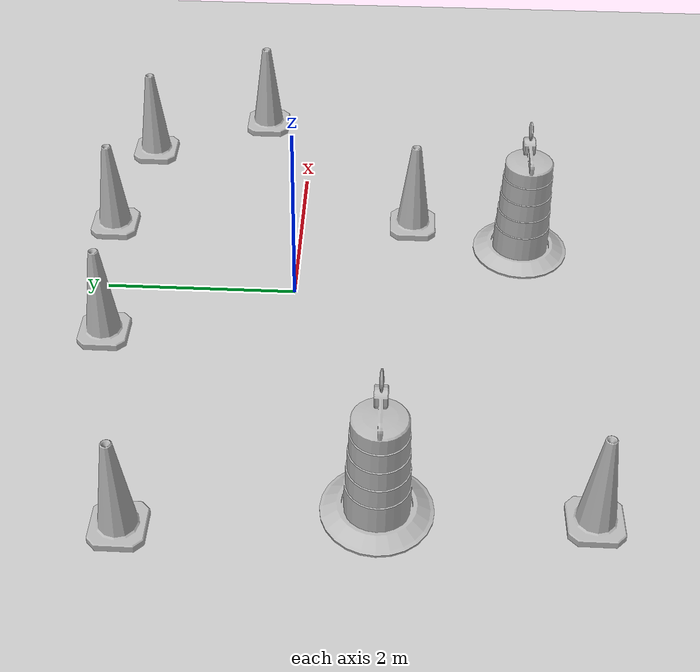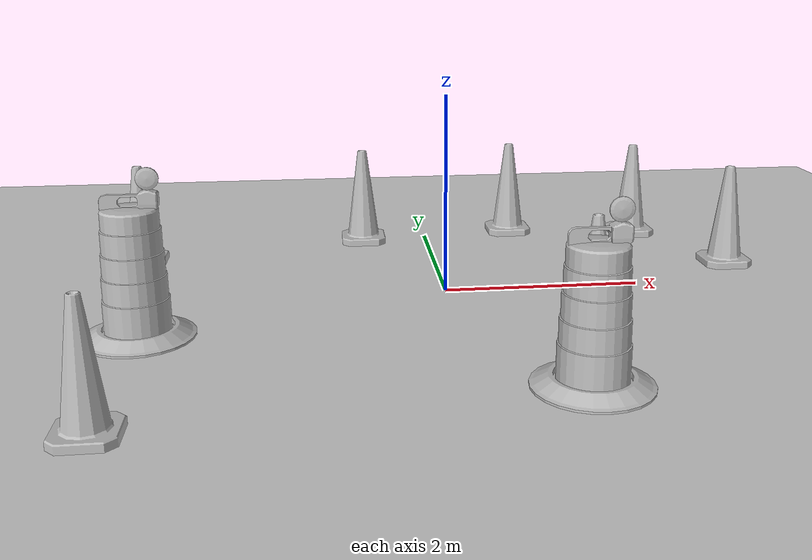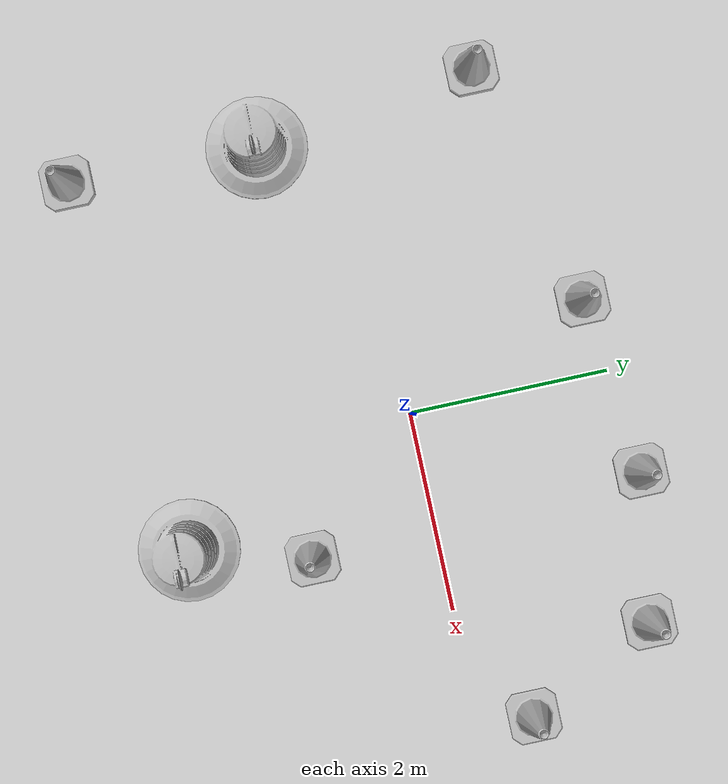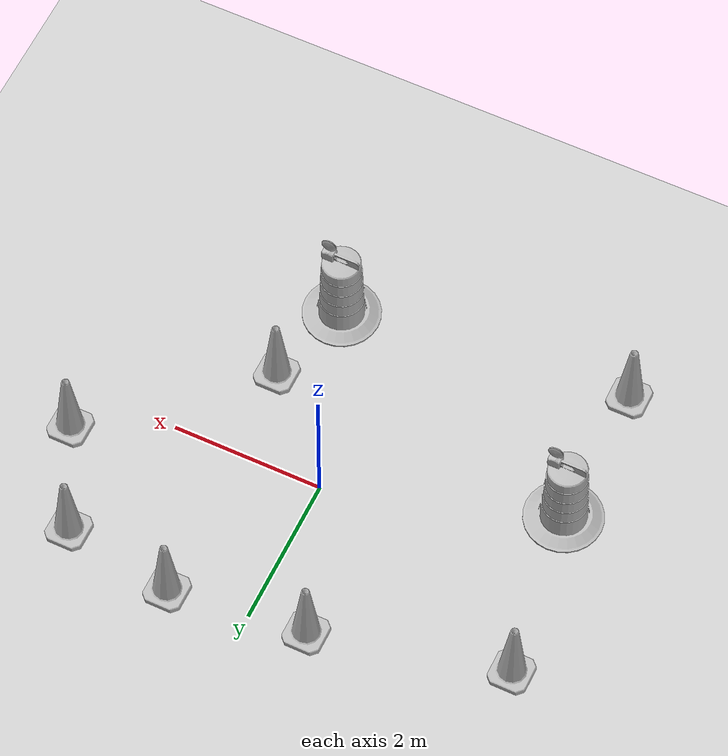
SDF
<sdf version="1.7">
 <world name="default">
  <light name="sun" type="directional">
   <pose>0 0 10 0 -0 0</pose>
   <diffuse>0.8 0.8 0.8 1</diffuse>
   <specular>0.2 0.2 0.2 1</specular>
   <attenuation>
    <range>1000</range>
    <constant>0.9</constant>
    <linear>0.01</linear>
    <quadratic>0.001</quadratic>
   </attenuation>
   <direction>-0.5 0.1 -0.9</direction>
   <spot><inner_angle>0</inner_angle><outer_angle>0</outer_angle><falloff>0</falloff></spot>
  </light>
  <model name="ground_plane">
   <static>1</static>
   <link name="link">
    <collision name="collision">
     <geometry><plane><normal>0 0 1</normal><size>100 100</size></plane></geometry>
     <surface>
      <contact><collide_bitmask>65535</collide_bitmask></contact>
      <friction><ode><mu>100</mu><mu2>50</mu2></ode></friction>
     </surface>
    </collision>
    <visual name="visual">
     <cast_shadows>0</cast_shadows>
     <geometry><plane><normal>0 0 1</normal><size>100 100</size></plane></geometry>
     <material>
      <script><uri>file://media/materials/scripts/gazebo.material</uri><name>Gazebo/Grey</name></script>
     </material>
    </visual>
   </link>
  </model>
  <gravity>0 0 -9.8</gravity>
  <magnetic_field>6e-06 2.3e-05 -4.2e-05</magnetic_field>
  <atmosphere type="adiabatic"/>
  <physics type="ode">
   <max_step_size>0.001</max_step_size>
   <real_time_factor>1</real_time_factor>
   <real_time_update_rate>1000</real_time_update_rate>
  </physics>
  <scene><ambient>0.4 0.4 0.4 1</ambient><background>0.7 0.7 0.7 1</background><shadows>1</shadows></scene>
  <spherical_coordinates>
   <surface_model>EARTH_WGS84</surface_model>
   <latitude_deg>0</latitude_deg>
   <longitude_deg>0</longitude_deg>
   <elevation>0</elevation>
   <heading_deg>0</heading_deg>
  </spherical_coordinates>
  <model name="Construction Cone">
   <link name="link">
    <collision name="collision">
     <geometry>
      <mesh><scale>10 10 10</scale><uri>model://construction_cone/meshes/construction_cone.dae</uri></mesh>
     </geometry>
    </collision>
    <visual name="visual">
     <geometry>
      <mesh><scale>10 10 10</scale><uri>model://construction_cone/meshes/construction_cone.dae</uri></mesh>
     </geometry>
    </visual>
    <inertial>
     <inertia><ixx>1</ixx><ixy>0</ixy><ixz>0</ixz><iyy>1</iyy><iyz>0</iyz><izz>1</izz></inertia>
     <mass>1</mass>
    </inertial>
   </link>
   <pose>-3.21174 1.31471 -0 0 -0 0</pose>
  </model>
  <model name="Construction Cone_0">
   <link name="link">
    <collision name="collision">
     <geometry>
      <mesh><scale>10 10 10</scale><uri>model://construction_cone/meshes/construction_cone.dae</uri></mesh>
     </geometry>
    </collision>
    <visual name="visual">
     <geometry>
      <mesh><scale>10 10 10</scale><uri>model://construction_cone/meshes/construction_cone.dae</uri></mesh>
     </geometry>
    </visual>
    <inertial>
     <inertia><ixx>1</ixx><ixy>0</ixy><ixz>0</ixz><iyy>1</iyy><iyz>0</iyz><izz>1</izz></inertia>
     <mass>1</mass>
    </inertial>
   </link>
   <pose>-0.742434 1.90646 -4e-06 4e-06 -1e-06 0</pose>
  </model>
  <model name="Construction Barrel">
   <link name="link">
    <inertial>
     <pose>0 0 0.4 0 -0 0</pose>
     <mass>500</mass>
     <inertia><ixx>51.2096</ixx><iyy>51.2096</iyy><izz>25</izz><ixy>0</ixy><ixz>0</ixz><iyz>0</iyz></inertia>
    </inertial>
    <collision name="collision">
     <geometry><mesh><uri>model://construction_barrel/meshes/construction_barrel.dae</uri></mesh></geometry>
    </collision>
    <visual name="visual">
     <geometry><mesh><uri>model://construction_barrel/meshes/construction_barrel.dae</uri></mesh></geometry>
    </visual>
   </link>
   <pose>-2.89591 -0.930871 -0 1e-06 -1e-06 -1.2e-05</pose>
  </model>
  <model name="Construction Cone_1">
   <link name="link">
    <collision name="collision">
     <geometry>
      <mesh><scale>10 10 10</scale><uri>model://construction_cone/meshes/construction_cone.dae</uri></mesh>
     </geometry>
    </collision>
    <visual name="visual">
     <geometry>
      <mesh><scale>10 10 10</scale><uri>model://construction_cone/meshes/construction_cone.dae</uri></mesh>
     </geometry>
    </visual>
    <inertial>
     <inertia><ixx>1</ixx><ixy>0</ixy><ixz>0</ixz><iyy>1</iyy><iyz>0</iyz><izz>1</izz></inertia>
     <mass>1</mass>
    </inertial>
   </link>
   <pose>1.20335 -1.24723 -1e-05 -1e-06 0 0</pose>
  </model>
  <model name="Construction Cone_2">
   <link name="link">
    <collision name="collision">
     <geometry>
      <mesh><scale>10 10 10</scale><uri>model://construction_cone/meshes/construction_cone.dae</uri></mesh>
     </geometry>
    </collision>
    <visual name="visual">
     <geometry>
      <mesh><scale>10 10 10</scale><uri>model://construction_cone/meshes/construction_cone.dae</uri></mesh>
     </geometry>
    </visual>
    <inertial>
     <inertia><ixx>1</ixx><ixy>0</ixy><ixz>0</ixz><iyy>1</iyy><iyz>0</iyz><izz>1</izz></inertia>
     <mass>1</mass>
    </inertial>
   </link>
   <pose>2.52163 1.87614 -0 0 -0 0</pose>
  </model>
  <model name="Construction Cone_3">
   <link name="link">
    <collision name="collision">
     <geometry>
      <mesh><scale>10 10 10</scale><uri>model://construction_cone/meshes/construction_cone.dae</uri></mesh>
     </geometry>
    </collision>
    <visual name="visual">
     <geometry>
      <mesh><scale>10 10 10</scale><uri>model://construction_cone/meshes/construction_cone.dae</uri></mesh>
     </geometry>
    </visual>
    <inertial>
     <inertia><ixx>1</ixx><ixy>0</ixy><ixz>0</ixz><iyy>1</iyy><iyz>0</iyz><izz>1</izz></inertia>
     <mass>1</mass>
    </inertial>
   </link>
   <pose>3.19041 0.560149 -0 0 -0 0</pose>
  </model>
  <model name="Construction Cone_4">
   <link name="link">
    <collision name="collision">
     <geometry>
      <mesh><scale>10 10 10</scale><uri>model://construction_cone/meshes/construction_cone.dae</uri></mesh>
     </geometry>
    </collision>
    <visual name="visual">
     <geometry>
      <mesh><scale>10 10 10</scale><uri>model://construction_cone/meshes/construction_cone.dae</uri></mesh>
     </geometry>
    </visual>
    <inertial>
     <inertia><ixx>1</ixx><ixy>0</ixy><ixz>0</ixz><iyy>1</iyy><iyz>0</iyz><izz>1</izz></inertia>
     <mass>1</mass>
    </inertial>
   </link>
   <pose>1.04496 2.11392 -9e-06 -5e-06 -0 -0</pose>
  </model>
  <model name="Construction Cone_5">
   <link name="link">
    <collision name="collision">
     <geometry>
      <mesh><scale>10 10 10</scale><uri>model://construction_cone/meshes/construction_cone.dae</uri></mesh>
     </geometry>
    </collision>
    <visual name="visual">
     <geometry>
      <mesh><scale>10 10 10</scale><uri>model://construction_cone/meshes/construction_cone.dae</uri></mesh>
     </geometry>
    </visual>
    <inertial>
     <inertia><ixx>1</ixx><ixy>0</ixy><ixz>0</ixz><iyy>1</iyy><iyz>0</iyz><izz>1</izz></inertia>
     <mass>1</mass>
    </inertial>
   </link>
   <pose>-2.94515 -2.84194 -0 0 -0 0</pose>
  </model>
  <model name="Construction Barrel_0">
   <link name="link">
    <inertial>
     <pose>0 0 0.4 0 -0 0</pose>
     <mass>500</mass>
     <inertia><ixx>51.2096</ixx><iyy>51.2096</iyy><izz>25</izz><ixy>0</ixy><ixz>0</ixz><iyz>0</iyz></inertia>
    </inertial>
    <collision name="collision">
     <geometry><mesh><uri>model://construction_barrel/meshes/construction_barrel.dae</uri></mesh></geometry>
    </collision>
    <visual name="visual">
     <geometry><mesh><uri>model://construction_barrel/meshes/construction_barrel.dae</uri></mesh></geometry>
    </visual>
   </link>
   <pose>0.863618 -2.42709 -1e-06 3e-06 -2e-06 -2e-06</pose>
  </model>
 </world>
</sdf>
